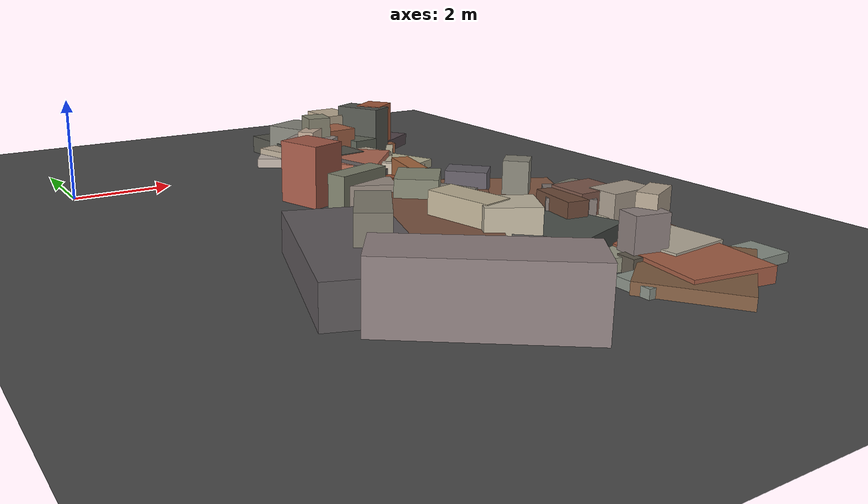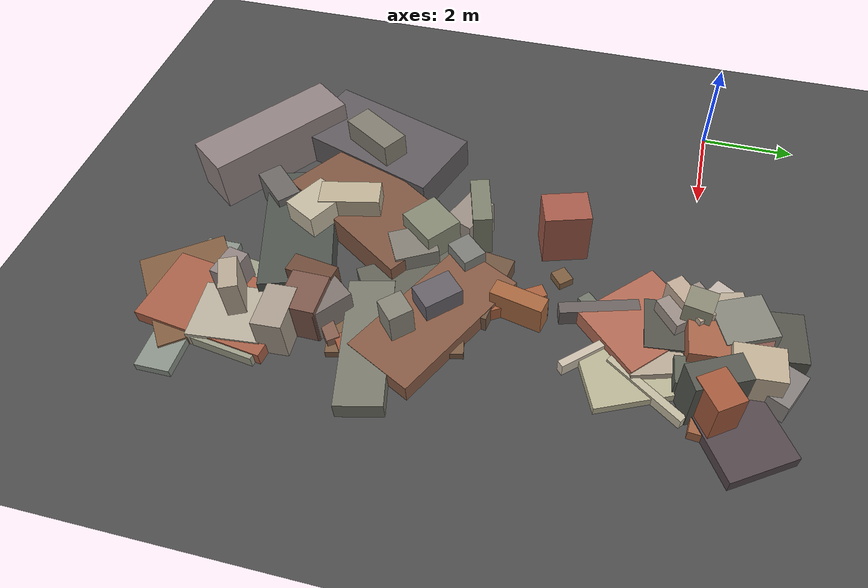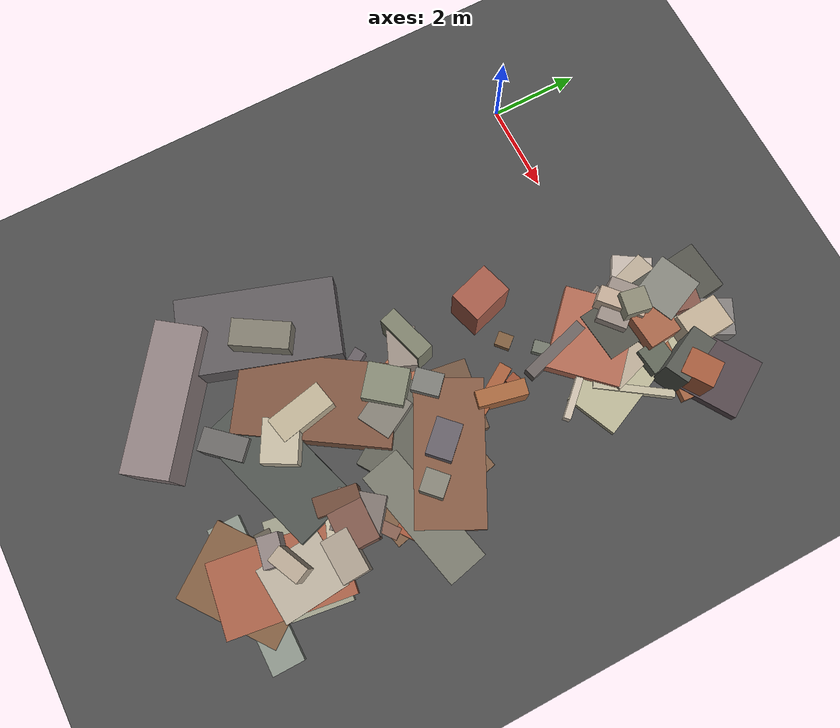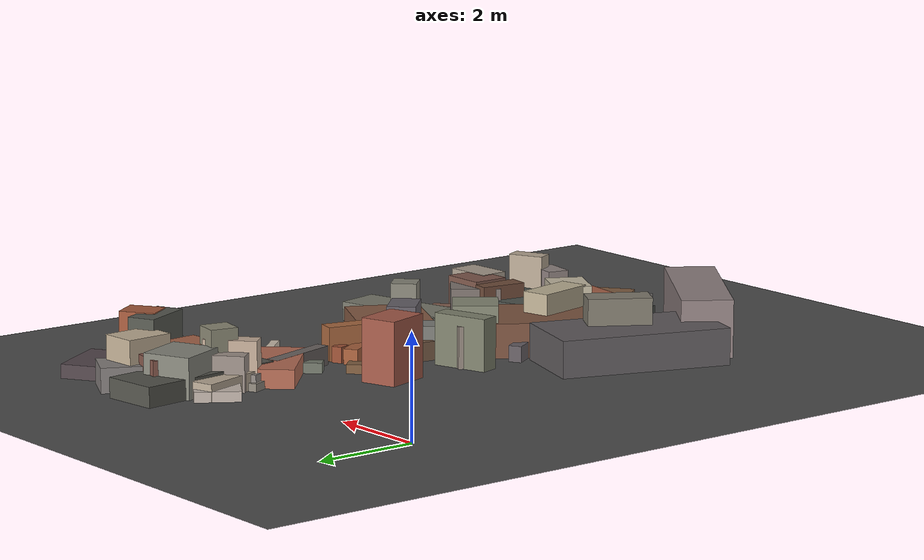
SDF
<sdf version="1.6">
 <world name="navitas_arena">
  <model name="ground_plane">
   <static>true</static>
   <link name="link">
    <collision name="collision">
     <geometry><plane><normal>0 0 1</normal><size>400 400</size></plane></geometry>
     <surface><friction><ode><mu>0.800</mu><mu2>0.800</mu2></ode></friction></surface>
    </collision>
    <visual name="visual">
     <cast_shadows>false</cast_shadows>
     <geometry><plane><normal>0 0 1</normal><size>400 400</size></plane></geometry>
     <material>
      <specular>0.04 0.04 0.04 1</specular>
      <script>
       <uri>file://media/materials/scripts/navitas_asphalt.material</uri>
       <name>Navitas/RealArenaAsphalt</name>
      </script>
     </material>
    </visual>
   </link>
  </model>
  <model name="deb_orta_12">
   <static>true</static>
   <pose>5.278 -4.513 0.000 0 0 0</pose>
   <link name="link">
    <collision name="col_0">
     <pose>0.349 0.404 0.186 0.000 0.000 2.993</pose>
     <geometry><box><size>1.561 1.014 0.373</size></box></geometry>
    </collision>
    <visual name="vis_0">
     <pose>0.349 0.404 0.186 0.000 0.000 2.993</pose>
     <geometry><box><size>1.561 1.014 0.373</size></box></geometry>
     <material>
      <ambient>0.42 0.31 0.24 1</ambient>
      <diffuse>0.45 0.34 0.26 1</diffuse>
      <specular>0.05 0.05 0.045 1</specular>
     </material>
    </visual>
    <collision name="col_1">
     <pose>0.856 -0.532 0.160 0.000 0.000 3.828</pose>
     <geometry><box><size>0.471 0.370 0.319</size></box></geometry>
    </collision>
    <visual name="vis_1">
     <pose>0.856 -0.532 0.160 0.000 0.000 3.828</pose>
     <geometry><box><size>0.471 0.370 0.319</size></box></geometry>
     <material>
      <ambient>0.61 0.35 0.27 1</ambient>
      <diffuse>0.66 0.38 0.29 1</diffuse>
      <specular>0.05 0.05 0.045 1</specular>
     </material>
    </visual>
    <collision name="col_2">
     <pose>-1.093 -0.086 0.409 0.000 0.000 1.177</pose>
     <geometry><box><size>0.602 0.843 0.818</size></box></geometry>
    </collision>
    <visual name="vis_2">
     <pose>-1.093 -0.086 0.409 0.000 0.000 1.177</pose>
     <geometry><box><size>0.602 0.843 0.818</size></box></geometry>
     <material>
      <ambient>0.57 0.52 0.48 1</ambient>
      <diffuse>0.61 0.56 0.52 1</diffuse>
      <specular>0.05 0.05 0.045 1</specular>
     </material>
    </visual>
    <collision name="col_3">
     <pose>-0.066 -1.000 0.366 0.000 0.000 2.077</pose>
     <geometry><box><size>0.883 0.762 0.733</size></box></geometry>
    </collision>
    <visual name="vis_3">
     <pose>-0.066 -1.000 0.366 0.000 0.000 2.077</pose>
     <geometry><box><size>0.883 0.762 0.733</size></box></geometry>
     <material>
      <ambient>0.49 0.46 0.42 1</ambient>
      <diffuse>0.52 0.50 0.46 1</diffuse>
      <specular>0.05 0.05 0.045 1</specular>
     </material>
    </visual>
    <collision name="col_4">
     <pose>0.527 1.200 0.154 0.000 0.000 2.135</pose>
     <geometry><box><size>1.284 0.287 0.308</size></box></geometry>
    </collision>
    <visual name="vis_4">
     <pose>0.527 1.200 0.154 0.000 0.000 2.135</pose>
     <geometry><box><size>1.284 0.287 0.308</size></box></geometry>
     <material>
      <ambient>0.61 0.35 0.23 1</ambient>
      <diffuse>0.66 0.38 0.24 1</diffuse>
      <specular>0.05 0.05 0.045 1</specular>
     </material>
    </visual>
    <collision name="col_5">
     <pose>-1.255 0.105 0.508 0.000 0.000 3.439</pose>
     <geometry><box><size>1.132 0.392 1.017</size></box></geometry>
    </collision>
    <visual name="vis_5">
     <pose>-1.255 0.105 0.508 0.000 0.000 3.439</pose>
     <geometry><box><size>1.132 0.392 1.017</size></box></geometry>
     <material>
      <ambient>0.47 0.47 0.40 1</ambient>
      <diffuse>0.50 0.51 0.43 1</diffuse>
      <specular>0.05 0.05 0.045 1</specular>
     </material>
    </visual>
   </link>
  </model>
  <model name="deb_orta_68">
   <static>true</static>
   <pose>6.900 -5.157 0.000 0 0 0</pose>
   <link name="link">
    <collision name="col_0">
     <pose>-0.596 0.449 0.407 0.000 0.000 3.919</pose>
     <geometry><box><size>0.568 0.799 0.815</size></box></geometry>
    </collision>
    <visual name="vis_0">
     <pose>-0.596 0.449 0.407 0.000 0.000 3.919</pose>
     <geometry><box><size>0.568 0.799 0.815</size></box></geometry>
     <material>
      <ambient>0.37 0.36 0.38 1</ambient>
      <diffuse>0.40 0.38 0.41 1</diffuse>
      <specular>0.05 0.05 0.045 1</specular>
     </material>
    </visual>
    <collision name="col_1">
     <pose>-0.586 -0.925 0.104 0.000 0.000 1.597</pose>
     <geometry><box><size>0.338 0.409 0.208</size></box></geometry>
    </collision>
    <visual name="vis_1">
     <pose>-0.586 -0.925 0.104 0.000 0.000 1.597</pose>
     <geometry><box><size>0.338 0.409 0.208</size></box></geometry>
     <material>
      <ambient>0.40 0.28 0.19 1</ambient>
      <diffuse>0.44 0.30 0.20 1</diffuse>
      <specular>0.05 0.05 0.045 1</specular>
     </material>
    </visual>
    <collision name="col_2">
     <pose>1.033 -0.759 0.157 0.000 0.000 3.772</pose>
     <geometry><box><size>1.386 0.278 0.313</size></box></geometry>
    </collision>
    <visual name="vis_2">
     <pose>1.033 -0.759 0.157 0.000 0.000 3.772</pose>
     <geometry><box><size>1.386 0.278 0.313</size></box></geometry>
     <material>
      <ambient>0.59 0.32 0.22 1</ambient>
      <diffuse>0.64 0.35 0.24 1</diffuse>
      <specular>0.05 0.05 0.045 1</specular>
     </material>
    </visual>
    <collision name="col_3">
     <pose>0.560 -0.636 0.191 0.000 0.000 3.372</pose>
     <geometry><box><size>2.800 0.911 0.383</size></box></geometry>
    </collision>
    <visual name="vis_3">
     <pose>0.560 -0.636 0.191 0.000 0.000 3.372</pose>
     <geometry><box><size>2.800 0.911 0.383</size></box></geometry>
     <material>
      <ambient>0.44 0.45 0.39 1</ambient>
      <diffuse>0.48 0.48 0.43 1</diffuse>
      <specular>0.05 0.05 0.045 1</specular>
     </material>
    </visual>
    <collision name="col_4">
     <pose>-0.268 -0.782 0.072 0.000 0.000 4.180</pose>
     <geometry><box><size>0.181 0.431 0.144</size></box></geometry>
    </collision>
    <visual name="vis_4">
     <pose>-0.268 -0.782 0.072 0.000 0.000 4.180</pose>
     <geometry><box><size>0.181 0.431 0.144</size></box></geometry>
     <material>
      <ambient>0.69 0.65 0.55 1</ambient>
      <diffuse>0.75 0.70 0.60 1</diffuse>
      <specular>0.05 0.05 0.045 1</specular>
     </material>
    </visual>
    <collision name="col_5">
     <pose>-0.962 -0.063 0.182 0.000 0.000 2.157</pose>
     <geometry><box><size>2.099 1.569 0.364</size></box></geometry>
    </collision>
    <visual name="vis_5">
     <pose>-0.962 -0.063 0.182 0.000 0.000 2.157</pose>
     <geometry><box><size>2.099 1.569 0.364</size></box></geometry>
     <material>
      <ambient>0.36 0.36 0.32 1</ambient>
      <diffuse>0.39 0.39 0.35 1</diffuse>
      <specular>0.05 0.05 0.045 1</specular>
     </material>
    </visual>
    <collision name="col_6">
     <pose>-0.135 -0.474 0.150 0.000 0.000 1.781</pose>
     <geometry><box><size>0.366 0.183 0.301</size></box></geometry>
    </collision>
    <visual name="vis_6">
     <pose>-0.135 -0.474 0.150 0.000 0.000 1.781</pose>
     <geometry><box><size>0.366 0.183 0.301</size></box></geometry>
     <material>
      <ambient>0.49 0.48 0.45 1</ambient>
      <diffuse>0.53 0.52 0.49 1</diffuse>
      <specular>0.05 0.05 0.045 1</specular>
     </material>
    </visual>
   </link>
  </model>
  <model name="deb_orta_105">
   <static>true</static>
   <pose>6.624 0.920 0.000 0 0 0</pose>
   <link name="link">
    <collision name="col_0">
     <pose>0.095 0.514 0.153 0.000 0.000 0.767</pose>
     <geometry><box><size>0.305 0.194 0.306</size></box></geometry>
    </collision>
    <visual name="vis_0">
     <pose>0.095 0.514 0.153 0.000 0.000 0.767</pose>
     <geometry><box><size>0.305 0.194 0.306</size></box></geometry>
     <material>
      <ambient>0.53 0.53 0.48 1</ambient>
      <diffuse>0.57 0.57 0.52 1</diffuse>
      <specular>0.05 0.05 0.045 1</specular>
     </material>
    </visual>
    <collision name="col_1">
     <pose>-0.067 0.650 0.243 0.000 0.000 1.110</pose>
     <geometry><box><size>1.087 0.821 0.485</size></box></geometry>
    </collision>
    <visual name="vis_1">
     <pose>-0.067 0.650 0.243 0.000 0.000 1.110</pose>
     <geometry><box><size>1.087 0.821 0.485</size></box></geometry>
     <material>
      <ambient>0.48 0.46 0.45 1</ambient>
      <diffuse>0.52 0.50 0.49 1</diffuse>
      <specular>0.05 0.05 0.045 1</specular>
     </material>
    </visual>
    <collision name="col_2">
     <pose>-0.752 0.257 0.341 0.000 0.000 1.382</pose>
     <geometry><box><size>0.791 0.703 0.683</size></box></geometry>
    </collision>
    <visual name="vis_2">
     <pose>-0.752 0.257 0.341 0.000 0.000 1.382</pose>
     <geometry><box><size>0.791 0.703 0.683</size></box></geometry>
     <material>
      <ambient>0.49 0.33 0.28 1</ambient>
      <diffuse>0.53 0.35 0.30 1</diffuse>
      <specular>0.05 0.05 0.045 1</specular>
     </material>
    </visual>
    <collision name="col_3">
     <pose>0.474 -0.493 0.120 0.000 0.000 -0.088</pose>
     <geometry><box><size>1.584 0.261 0.240</size></box></geometry>
    </collision>
    <visual name="vis_3">
     <pose>0.474 -0.493 0.120 0.000 0.000 -0.088</pose>
     <geometry><box><size>1.584 0.261 0.240</size></box></geometry>
     <material>
      <ambient>0.58 0.36 0.24 1</ambient>
      <diffuse>0.63 0.39 0.26 1</diffuse>
      <specular>0.05 0.05 0.045 1</specular>
     </material>
    </visual>
    <collision name="col_4">
     <pose>0.517 -0.383 0.587 0.000 0.000 -1.120</pose>
     <geometry><box><size>1.077 0.550 1.174</size></box></geometry>
    </collision>
    <visual name="vis_4">
     <pose>0.517 -0.383 0.587 0.000 0.000 -1.120</pose>
     <geometry><box><size>1.077 0.550 1.174</size></box></geometry>
     <material>
      <ambient>0.31 0.32 0.30 1</ambient>
      <diffuse>0.34 0.35 0.32 1</diffuse>
      <specular>0.05 0.05 0.045 1</specular>
     </material>
    </visual>
    <collision name="col_5">
     <pose>0.009 0.345 0.482 0.000 0.000 0.064</pose>
     <geometry><box><size>0.722 0.940 0.965</size></box></geometry>
    </collision>
    <visual name="vis_5">
     <pose>0.009 0.345 0.482 0.000 0.000 0.064</pose>
     <geometry><box><size>0.722 0.940 0.965</size></box></geometry>
     <material>
      <ambient>0.71 0.64 0.55 1</ambient>
      <diffuse>0.76 0.69 0.59 1</diffuse>
      <specular>0.05 0.05 0.045 1</specular>
     </material>
    </visual>
   </link>
  </model>
  <model name="deb_orta_120">
   <static>true</static>
   <pose>6.694 0.435 0.000 0 0 0</pose>
   <link name="link">
    <collision name="col_0">
     <pose>-0.219 -0.291 0.177 0.000 0.000 0.506</pose>
     <geometry><box><size>1.607 0.126 0.355</size></box></geometry>
    </collision>
    <visual name="vis_0">
     <pose>-0.219 -0.291 0.177 0.000 0.000 0.506</pose>
     <geometry><box><size>1.607 0.126 0.355</size></box></geometry>
     <material>
      <ambient>0.37 0.36 0.34 1</ambient>
      <diffuse>0.40 0.39 0.37 1</diffuse>
      <specular>0.05 0.05 0.045 1</specular>
     </material>
    </visual>
    <collision name="col_1">
     <pose>0.466 -1.021 0.123 0.000 0.000 0.974</pose>
     <geometry><box><size>1.748 0.160 0.245</size></box></geometry>
    </collision>
    <visual name="vis_1">
     <pose>0.466 -1.021 0.123 0.000 0.000 0.974</pose>
     <geometry><box><size>1.748 0.160 0.245</size></box></geometry>
     <material>
      <ambient>0.70 0.67 0.58 1</ambient>
      <diffuse>0.76 0.73 0.63 1</diffuse>
      <specular>0.05 0.05 0.045 1</specular>
     </material>
    </visual>
    <collision name="col_2">
     <pose>-0.018 -0.850 0.093 0.000 0.000 1.990</pose>
     <geometry><box><size>2.771 1.200 0.185</size></box></geometry>
    </collision>
    <visual name="vis_2">
     <pose>-0.018 -0.850 0.093 0.000 0.000 1.990</pose>
     <geometry><box><size>2.771 1.200 0.185</size></box></geometry>
     <material>
      <ambient>0.67 0.66 0.55 1</ambient>
      <diffuse>0.73 0.71 0.59 1</diffuse>
      <specular>0.05 0.05 0.045 1</specular>
     </material>
    </visual>
    <collision name="col_3">
     <pose>-0.115 -0.136 0.110 0.000 0.000 2.664</pose>
     <geometry><box><size>0.428 0.347 0.220</size></box></geometry>
    </collision>
    <visual name="vis_3">
     <pose>-0.115 -0.136 0.110 0.000 0.000 2.664</pose>
     <geometry><box><size>0.428 0.347 0.220</size></box></geometry>
     <material>
      <ambient>0.64 0.42 0.30 1</ambient>
      <diffuse>0.70 0.45 0.33 1</diffuse>
      <specular>0.05 0.05 0.045 1</specular>
     </material>
    </visual>
   </link>
  </model>
  <model name="deb_orta_136">
   <static>true</static>
   <pose>7.070 -8.859 0.000 0 0 0</pose>
   <link name="link">
    <collision name="col_0">
     <pose>0.591 -0.044 0.113 0.000 0.000 -0.065</pose>
     <geometry><box><size>0.381 0.366 0.226</size></box></geometry>
    </collision>
    <visual name="vis_0">
     <pose>0.591 -0.044 0.113 0.000 0.000 -0.065</pose>
     <geometry><box><size>0.381 0.366 0.226</size></box></geometry>
     <material>
      <ambient>0.55 0.54 0.48 1</ambient>
      <diffuse>0.60 0.59 0.51 1</diffuse>
      <specular>0.05 0.05 0.045 1</specular>
     </material>
    </visual>
    <collision name="col_1">
     <pose>0.185 -0.653 0.086 0.000 0.000 0.003</pose>
     <geometry><box><size>3.200 0.701 0.173</size></box></geometry>
    </collision>
    <visual name="vis_1">
     <pose>0.185 -0.653 0.086 0.000 0.000 0.003</pose>
     <geometry><box><size>3.200 0.701 0.173</size></box></geometry>
     <material>
      <ambient>0.51 0.53 0.50 1</ambient>
      <diffuse>0.55 0.58 0.54 1</diffuse>
      <specular>0.05 0.05 0.045 1</specular>
     </material>
    </visual>
    <collision name="col_2">
     <pose>0.550 -0.290 0.092 0.000 0.000 0.301</pose>
     <geometry><box><size>0.220 0.359 0.184</size></box></geometry>
    </collision>
    <visual name="vis_2">
     <pose>0.550 -0.290 0.092 0.000 0.000 0.301</pose>
     <geometry><box><size>0.220 0.359 0.184</size></box></geometry>
     <material>
      <ambient>0.66 0.39 0.29 1</ambient>
      <diffuse>0.71 0.42 0.31 1</diffuse>
      <specular>0.05 0.05 0.045 1</specular>
     </material>
    </visual>
    <collision name="col_3">
     <pose>-0.769 -0.012 0.139 0.000 0.000 -0.014</pose>
     <geometry><box><size>0.201 0.349 0.277</size></box></geometry>
    </collision>
    <visual name="vis_3">
     <pose>-0.769 -0.012 0.139 0.000 0.000 -0.014</pose>
     <geometry><box><size>0.201 0.349 0.277</size></box></geometry>
     <material>
      <ambient>0.36 0.34 0.29 1</ambient>
      <diffuse>0.39 0.36 0.31 1</diffuse>
      <specular>0.05 0.05 0.045 1</specular>
     </material>
    </visual>
    <collision name="col_4">
     <pose>0.038 0.322 0.587 0.000 0.000 0.434</pose>
     <geometry><box><size>0.723 0.357 1.173</size></box></geometry>
    </collision>
    <visual name="vis_4">
     <pose>0.038 0.322 0.587 0.000 0.000 0.434</pose>
     <geometry><box><size>0.723 0.357 1.173</size></box></geometry>
     <material>
      <ambient>0.67 0.61 0.53 1</ambient>
      <diffuse>0.72 0.66 0.58 1</diffuse>
      <specular>0.05 0.05 0.045 1</specular>
     </material>
    </visual>
    <collision name="col_5">
     <pose>-0.169 -0.431 0.139 0.000 0.000 1.788</pose>
     <geometry><box><size>0.206 0.167 0.278</size></box></geometry>
    </collision>
    <visual name="vis_5">
     <pose>-0.169 -0.431 0.139 0.000 0.000 1.788</pose>
     <geometry><box><size>0.206 0.167 0.278</size></box></geometry>
     <material>
      <ambient>0.60 0.61 0.55 1</ambient>
      <diffuse>0.64 0.66 0.59 1</diffuse>
      <specular>0.05 0.05 0.045 1</specular>
     </material>
    </visual>
    <collision name="col_6">
     <pose>-0.074 -0.721 0.109 0.000 0.000 0.642</pose>
     <geometry><box><size>2.282 1.722 0.217</size></box></geometry>
    </collision>
    <visual name="vis_6">
     <pose>-0.074 -0.721 0.109 0.000 0.000 0.642</pose>
     <geometry><box><size>2.282 1.722 0.217</size></box></geometry>
     <material>
      <ambient>0.47 0.34 0.24 1</ambient>
      <diffuse>0.51 0.37 0.26 1</diffuse>
      <specular>0.05 0.05 0.045 1</specular>
     </material>
    </visual>
   </link>
  </model>
  <model name="deb_orta_159">
   <static>true</static>
   <pose>7.107 -7.897 0.000 0 0 0</pose>
   <link name="link">
    <collision name="col_0">
     <pose>-0.196 -0.059 0.122 0.000 0.000 0.952</pose>
     <geometry><box><size>0.441 0.358 0.245</size></box></geometry>
    </collision>
    <visual name="vis_0">
     <pose>-0.196 -0.059 0.122 0.000 0.000 0.952</pose>
     <geometry><box><size>0.441 0.358 0.245</size></box></geometry>
     <material>
      <ambient>0.40 0.27 0.23 1</ambient>
      <diffuse>0.43 0.29 0.25 1</diffuse>
      <specular>0.05 0.05 0.045 1</specular>
     </material>
    </visual>
    <collision name="col_1">
     <pose>0.351 0.384 0.461 0.000 0.000 3.193</pose>
     <geometry><box><size>0.946 0.588 0.921</size></box></geometry>
    </collision>
    <visual name="vis_1">
     <pose>0.351 0.384 0.461 0.000 0.000 3.193</pose>
     <geometry><box><size>0.946 0.588 0.921</size></box></geometry>
     <material>
      <ambient>0.62 0.57 0.52 1</ambient>
      <diffuse>0.67 0.62 0.56 1</diffuse>
      <specular>0.05 0.05 0.045 1</specular>
     </material>
    </visual>
    <collision name="col_2">
     <pose>0.060 -0.816 0.067 0.000 0.000 1.966</pose>
     <geometry><box><size>1.635 0.256 0.134</size></box></geometry>
    </collision>
    <visual name="vis_2">
     <pose>0.060 -0.816 0.067 0.000 0.000 1.966</pose>
     <geometry><box><size>1.635 0.256 0.134</size></box></geometry>
     <material>
      <ambient>0.35 0.35 0.35 1</ambient>
      <diffuse>0.38 0.38 0.37 1</diffuse>
      <specular>0.05 0.05 0.045 1</specular>
     </material>
    </visual>
    <collision name="col_3">
     <pose>0.303 -0.612 0.163 0.000 0.000 1.662</pose>
     <geometry><box><size>1.453 1.248 0.327</size></box></geometry>
    </collision>
    <visual name="vis_3">
     <pose>0.303 -0.612 0.163 0.000 0.000 1.662</pose>
     <geometry><box><size>1.453 1.248 0.327</size></box></geometry>
     <material>
      <ambient>0.68 0.63 0.57 1</ambient>
      <diffuse>0.73 0.69 0.62 1</diffuse>
      <specular>0.05 0.05 0.045 1</specular>
     </material>
    </visual>
    <collision name="col_4">
     <pose>0.053 -0.382 0.124 0.000 0.000 3.003</pose>
     <geometry><box><size>2.094 1.313 0.247</size></box></geometry>
    </collision>
    <visual name="vis_4">
     <pose>0.053 -0.382 0.124 0.000 0.000 3.003</pose>
     <geometry><box><size>2.094 1.313 0.247</size></box></geometry>
     <material>
      <ambient>0.57 0.57 0.50 1</ambient>
      <diffuse>0.62 0.62 0.54 1</diffuse>
      <specular>0.05 0.05 0.045 1</specular>
     </material>
    </visual>
    <collision name="col_5">
     <pose>-0.315 0.465 0.246 0.000 0.000 2.781</pose>
     <geometry><box><size>0.777 0.417 0.492</size></box></geometry>
    </collision>
    <visual name="vis_5">
     <pose>-0.315 0.465 0.246 0.000 0.000 2.781</pose>
     <geometry><box><size>0.777 0.417 0.492</size></box></geometry>
     <material>
      <ambient>0.71 0.67 0.59 1</ambient>
      <diffuse>0.77 0.73 0.64 1</diffuse>
      <specular>0.05 0.05 0.045 1</specular>
     </material>
    </visual>
   </link>
  </model>
  <model name="deb_orta_197">
   <static>true</static>
   <pose>6.949 -9.328 0.000 0 0 0</pose>
   <link name="link">
    <collision name="col_0">
     <pose>0.279 0.431 0.143 0.000 0.000 1.433</pose>
     <geometry><box><size>2.750 1.599 0.286</size></box></geometry>
    </collision>
    <visual name="vis_0">
     <pose>0.279 0.431 0.143 0.000 0.000 1.433</pose>
     <geometry><box><size>2.750 1.599 0.286</size></box></geometry>
     <material>
      <ambient>0.61 0.35 0.26 1</ambient>
      <diffuse>0.66 0.38 0.28 1</diffuse>
      <specular>0.05 0.05 0.045 1</specular>
     </material>
    </visual>
    <collision name="col_1">
     <pose>-0.014 0.549 0.097 0.000 0.000 2.367</pose>
     <geometry><box><size>0.278 0.399 0.193</size></box></geometry>
    </collision>
    <visual name="vis_1">
     <pose>-0.014 0.549 0.097 0.000 0.000 2.367</pose>
     <geometry><box><size>0.278 0.399 0.193</size></box></geometry>
     <material>
      <ambient>0.62 0.59 0.51 1</ambient>
      <diffuse>0.67 0.64 0.55 1</diffuse>
      <specular>0.05 0.05 0.045 1</specular>
     </material>
    </visual>
    <collision name="col_2">
     <pose>0.140 -0.140 0.083 0.000 0.000 1.910</pose>
     <geometry><box><size>0.272 0.401 0.165</size></box></geometry>
    </collision>
    <visual name="vis_2">
     <pose>0.140 -0.140 0.083 0.000 0.000 1.910</pose>
     <geometry><box><size>0.272 0.401 0.165</size></box></geometry>
     <material>
      <ambient>0.64 0.42 0.29 1</ambient>
      <diffuse>0.69 0.46 0.31 1</diffuse>
      <specular>0.05 0.05 0.045 1</specular>
     </material>
    </visual>
    <collision name="col_3">
     <pose>-0.254 0.567 0.459 0.000 0.000 2.954</pose>
     <geometry><box><size>0.655 0.436 0.917</size></box></geometry>
    </collision>
    <visual name="vis_3">
     <pose>-0.254 0.567 0.459 0.000 0.000 2.954</pose>
     <geometry><box><size>0.655 0.436 0.917</size></box></geometry>
     <material>
      <ambient>0.53 0.49 0.47 1</ambient>
      <diffuse>0.57 0.52 0.51 1</diffuse>
      <specular>0.05 0.05 0.045 1</specular>
     </material>
    </visual>
   </link>
  </model>
  <model name="deb_orta_247">
   <static>true</static>
   <pose>7.003 0.757 0.000 0 0 0</pose>
   <link name="link">
    <collision name="col_0">
     <pose>0.612 0.351 0.136 0.000 0.000 0.572</pose>
     <geometry><box><size>1.673 1.374 0.273</size></box></geometry>
    </collision>
    <visual name="vis_0">
     <pose>0.612 0.351 0.136 0.000 0.000 0.572</pose>
     <geometry><box><size>1.673 1.374 0.273</size></box></geometry>
     <material>
      <ambient>0.31 0.26 0.28 1</ambient>
      <diffuse>0.33 0.28 0.30 1</diffuse>
      <specular>0.05 0.05 0.045 1</specular>
     </material>
    </visual>
    <collision name="col_1">
     <pose>-0.223 -0.609 0.251 0.000 0.000 0.115</pose>
     <geometry><box><size>0.591 0.585 0.502</size></box></geometry>
    </collision>
    <visual name="vis_1">
     <pose>-0.223 -0.609 0.251 0.000 0.000 0.115</pose>
     <geometry><box><size>0.591 0.585 0.502</size></box></geometry>
     <material>
      <ambient>0.35 0.37 0.32 1</ambient>
      <diffuse>0.38 0.40 0.35 1</diffuse>
      <specular>0.05 0.05 0.045 1</specular>
     </material>
    </visual>
    <collision name="col_2">
     <pose>-0.177 -0.688 0.106 0.000 0.000 -0.572</pose>
     <geometry><box><size>0.194 0.316 0.211</size></box></geometry>
    </collision>
    <visual name="vis_2">
     <pose>-0.177 -0.688 0.106 0.000 0.000 -0.572</pose>
     <geometry><box><size>0.194 0.316 0.211</size></box></geometry>
     <material>
      <ambient>0.48 0.50 0.48 1</ambient>
      <diffuse>0.52 0.54 0.52 1</diffuse>
      <specular>0.05 0.05 0.045 1</specular>
     </material>
    </visual>
    <collision name="col_3">
     <pose>0.061 -0.528 0.113 0.000 0.000 -0.377</pose>
     <geometry><box><size>0.414 0.270 0.227</size></box></geometry>
    </collision>
    <visual name="vis_3">
     <pose>0.061 -0.528 0.113 0.000 0.000 -0.377</pose>
     <geometry><box><size>0.414 0.270 0.227</size></box></geometry>
     <material>
      <ambient>0.35 0.35 0.32 1</ambient>
      <diffuse>0.38 0.37 0.34 1</diffuse>
      <specular>0.05 0.05 0.045 1</specular>
     </material>
    </visual>
    <collision name="col_4">
     <pose>0.483 -0.161 0.597 0.000 0.000 0.606</pose>
     <geometry><box><size>0.716 0.587 1.195</size></box></geometry>
    </collision>
    <visual name="vis_4">
     <pose>0.483 -0.161 0.597 0.000 0.000 0.606</pose>
     <geometry><box><size>0.716 0.587 1.195</size></box></geometry>
     <material>
      <ambient>0.60 0.33 0.22 1</ambient>
      <diffuse>0.65 0.36 0.24 1</diffuse>
      <specular>0.05 0.05 0.045 1</specular>
     </material>
    </visual>
   </link>
  </model>
  <model name="deb_orta_272">
   <static>true</static>
   <pose>5.508 0.232 0.000 0 0 0</pose>
   <link name="link">
    <collision name="col_0">
     <pose>0.680 0.157 0.388 0.000 0.000 0.088</pose>
     <geometry><box><size>0.791 0.766 0.776</size></box></geometry>
    </collision>
    <visual name="vis_0">
     <pose>0.680 0.157 0.388 0.000 0.000 0.088</pose>
     <geometry><box><size>0.791 0.766 0.776</size></box></geometry>
     <material>
      <ambient>0.61 0.37 0.27 1</ambient>
      <diffuse>0.66 0.40 0.29 1</diffuse>
      <specular>0.05 0.05 0.045 1</specular>
     </material>
    </visual>
    <collision name="col_1">
     <pose>0.167 0.485 0.196 0.000 0.000 1.678</pose>
     <geometry><box><size>3.024 1.126 0.392</size></box></geometry>
    </collision>
    <visual name="vis_1">
     <pose>0.167 0.485 0.196 0.000 0.000 1.678</pose>
     <geometry><box><size>3.024 1.126 0.392</size></box></geometry>
     <material>
      <ambient>0.31 0.31 0.28 1</ambient>
      <diffuse>0.33 0.33 0.30 1</diffuse>
      <specular>0.05 0.05 0.045 1</specular>
     </material>
    </visual>
    <collision name="col_2">
     <pose>-0.281 0.638 0.073 0.000 0.000 1.483</pose>
     <geometry><box><size>0.421 0.353 0.146</size></box></geometry>
    </collision>
    <visual name="vis_2">
     <pose>-0.281 0.638 0.073 0.000 0.000 1.483</pose>
     <geometry><box><size>0.421 0.353 0.146</size></box></geometry>
     <material>
      <ambient>0.38 0.35 0.32 1</ambient>
      <diffuse>0.41 0.37 0.35 1</diffuse>
      <specular>0.05 0.05 0.045 1</specular>
     </material>
    </visual>
    <collision name="col_3">
     <pose>0.149 0.143 0.100 0.000 0.000 1.873</pose>
     <geometry><box><size>0.188 0.235 0.201</size></box></geometry>
    </collision>
    <visual name="vis_3">
     <pose>0.149 0.143 0.100 0.000 0.000 1.873</pose>
     <geometry><box><size>0.188 0.235 0.201</size></box></geometry>
     <material>
      <ambient>0.45 0.41 0.40 1</ambient>
      <diffuse>0.49 0.44 0.43 1</diffuse>
      <specular>0.05 0.05 0.045 1</specular>
     </material>
    </visual>
    <collision name="col_4">
     <pose>-0.402 -0.508 0.149 0.000 0.000 2.024</pose>
     <geometry><box><size>0.466 0.322 0.297</size></box></geometry>
    </collision>
    <visual name="vis_4">
     <pose>-0.402 -0.508 0.149 0.000 0.000 2.024</pose>
     <geometry><box><size>0.466 0.322 0.297</size></box></geometry>
     <material>
      <ambient>0.52 0.49 0.47 1</ambient>
      <diffuse>0.56 0.53 0.51 1</diffuse>
      <specular>0.05 0.05 0.045 1</specular>
     </material>
    </visual>
    <collision name="col_5">
     <pose>-0.079 -0.270 0.344 0.000 0.000 2.283</pose>
     <geometry><box><size>1.007 0.667 0.688</size></box></geometry>
    </collision>
    <visual name="vis_5">
     <pose>-0.079 -0.270 0.344 0.000 0.000 2.283</pose>
     <geometry><box><size>1.007 0.667 0.688</size></box></geometry>
     <material>
      <ambient>0.57 0.52 0.49 1</ambient>
      <diffuse>0.61 0.56 0.53 1</diffuse>
      <specular>0.05 0.05 0.045 1</specular>
     </material>
    </visual>
    <collision name="col_6">
     <pose>-0.536 -0.400 0.076 0.000 0.000 1.980</pose>
     <geometry><box><size>0.306 0.296 0.153</size></box></geometry>
    </collision>
    <visual name="vis_6">
     <pose>-0.536 -0.400 0.076 0.000 0.000 1.980</pose>
     <geometry><box><size>0.306 0.296 0.153</size></box></geometry>
     <material>
      <ambient>0.52 0.49 0.45 1</ambient>
      <diffuse>0.56 0.53 0.49 1</diffuse>
      <specular>0.05 0.05 0.045 1</specular>
     </material>
    </visual>
   </link>
  </model>
  <model name="deb_orta_282">
   <static>true</static>
   <pose>6.140 -0.681 0.000 0 0 0</pose>
   <link name="link">
    <collision name="col_0">
     <pose>0.610 0.969 0.159 0.000 0.000 1.524</pose>
     <geometry><box><size>0.371 0.273 0.318</size></box></geometry>
    </collision>
    <visual name="vis_0">
     <pose>0.610 0.969 0.159 0.000 0.000 1.524</pose>
     <geometry><box><size>0.371 0.273 0.318</size></box></geometry>
     <material>
      <ambient>0.64 0.41 0.29 1</ambient>
      <diffuse>0.70 0.44 0.31 1</diffuse>
      <specular>0.05 0.05 0.045 1</specular>
     </material>
    </visual>
    <collision name="col_1">
     <pose>-0.494 -0.984 0.186 0.000 0.000 1.856</pose>
     <geometry><box><size>1.568 0.256 0.373</size></box></geometry>
    </collision>
    <visual name="vis_1">
     <pose>-0.494 -0.984 0.186 0.000 0.000 1.856</pose>
     <geometry><box><size>1.568 0.256 0.373</size></box></geometry>
     <material>
      <ambient>0.39 0.36 0.36 1</ambient>
      <diffuse>0.42 0.39 0.38 1</diffuse>
      <specular>0.05 0.05 0.045 1</specular>
     </material>
    </visual>
    <collision name="col_2">
     <pose>-0.384 -0.140 0.186 0.000 0.000 2.385</pose>
     <geometry><box><size>1.876 1.618 0.372</size></box></geometry>
    </collision>
    <visual name="vis_2">
     <pose>-0.384 -0.140 0.186 0.000 0.000 2.385</pose>
     <geometry><box><size>1.876 1.618 0.372</size></box></geometry>
     <material>
      <ambient>0.65 0.39 0.31 1</ambient>
      <diffuse>0.70 0.42 0.33 1</diffuse>
      <specular>0.05 0.05 0.045 1</specular>
     </material>
    </visual>
    <collision name="col_3">
     <pose>0.182 -0.706 0.143 0.000 0.000 2.328</pose>
     <geometry><box><size>2.161 0.152 0.286</size></box></geometry>
    </collision>
    <visual name="vis_3">
     <pose>0.182 -0.706 0.143 0.000 0.000 2.328</pose>
     <geometry><box><size>2.161 0.152 0.286</size></box></geometry>
     <material>
      <ambient>0.74 0.70 0.63 1</ambient>
      <diffuse>0.80 0.75 0.68 1</diffuse>
      <specular>0.05 0.05 0.045 1</specular>
     </material>
    </visual>
   </link>
  </model>
  <model name="deb_orta_285">
   <static>true</static>
   <pose>4.474 -5.280 0.000 0 0 0</pose>
   <link name="link">
    <collision name="col_0">
     <pose>0.294 0.024 0.512 0.000 0.000 2.473</pose>
     <geometry><box><size>0.780 0.882 1.025</size></box></geometry>
    </collision>
    <visual name="vis_0">
     <pose>0.294 0.024 0.512 0.000 0.000 2.473</pose>
     <geometry><box><size>0.780 0.882 1.025</size></box></geometry>
     <material>
      <ambient>0.49 0.50 0.43 1</ambient>
      <diffuse>0.53 0.54 0.46 1</diffuse>
      <specular>0.05 0.05 0.045 1</specular>
     </material>
    </visual>
    <collision name="col_1">
     <pose>0.046 0.565 0.108 0.000 0.000 2.687</pose>
     <geometry><box><size>1.625 0.233 0.216</size></box></geometry>
    </collision>
    <visual name="vis_1">
     <pose>0.046 0.565 0.108 0.000 0.000 2.687</pose>
     <geometry><box><size>1.625 0.233 0.216</size></box></geometry>
     <material>
      <ambient>0.46 0.44 0.41 1</ambient>
      <diffuse>0.50 0.47 0.44 1</diffuse>
      <specular>0.05 0.05 0.045 1</specular>
     </material>
    </visual>
    <collision name="col_2">
     <pose>0.592 0.828 0.326 0.000 0.000 3.979</pose>
     <geometry><box><size>0.614 0.495 0.651</size></box></geometry>
    </collision>
    <visual name="vis_2">
     <pose>0.592 0.828 0.326 0.000 0.000 3.979</pose>
     <geometry><box><size>0.614 0.495 0.651</size></box></geometry>
     <material>
      <ambient>0.45 0.45 0.44 1</ambient>
      <diffuse>0.49 0.49 0.47 1</diffuse>
      <specular>0.05 0.05 0.045 1</specular>
     </material>
    </visual>
    <collision name="col_3">
     <pose>-0.170 -1.067 0.157 0.000 0.000 2.114</pose>
     <geometry><box><size>2.253 0.260 0.315</size></box></geometry>
    </collision>
    <visual name="vis_3">
     <pose>-0.170 -1.067 0.157 0.000 0.000 2.114</pose>
     <geometry><box><size>2.253 0.260 0.315</size></box></geometry>
     <material>
      <ambient>0.37 0.35 0.36 1</ambient>
      <diffuse>0.40 0.37 0.39 1</diffuse>
      <specular>0.05 0.05 0.045 1</specular>
     </material>
    </visual>
    <collision name="col_4">
     <pose>0.182 0.644 0.124 0.000 0.000 3.651</pose>
     <geometry><box><size>1.172 0.245 0.248</size></box></geometry>
    </collision>
    <visual name="vis_4">
     <pose>0.182 0.644 0.124 0.000 0.000 3.651</pose>
     <geometry><box><size>1.172 0.245 0.248</size></box></geometry>
     <material>
      <ambient>0.65 0.41 0.30 1</ambient>
      <diffuse>0.71 0.44 0.32 1</diffuse>
      <specular>0.05 0.05 0.045 1</specular>
     </material>
    </visual>
    <collision name="col_5">
     <pose>-0.015 -0.226 0.179 0.000 0.000 3.858</pose>
     <geometry><box><size>2.279 0.143 0.358</size></box></geometry>
    </collision>
    <visual name="vis_5">
     <pose>-0.015 -0.226 0.179 0.000 0.000 3.858</pose>
     <geometry><box><size>2.279 0.143 0.358</size></box></geometry>
     <material>
      <ambient>0.49 0.46 0.44 1</ambient>
      <diffuse>0.53 0.50 0.47 1</diffuse>
      <specular>0.05 0.05 0.045 1</specular>
     </material>
    </visual>
   </link>
  </model>
  <model name="deb_orta_289">
   <static>true</static>
   <pose>6.606 -5.034 0.000 0 0 0</pose>
   <link name="link">
    <collision name="col_0">
     <pose>-0.052 0.323 0.195 0.000 0.000 -0.468</pose>
     <geometry><box><size>3.159 1.498 0.391</size></box></geometry>
    </collision>
    <visual name="vis_0">
     <pose>-0.052 0.323 0.195 0.000 0.000 -0.468</pose>
     <geometry><box><size>3.159 1.498 0.391</size></box></geometry>
     <material>
      <ambient>0.50 0.33 0.25 1</ambient>
      <diffuse>0.53 0.36 0.27 1</diffuse>
      <specular>0.05 0.05 0.045 1</specular>
     </material>
    </visual>
    <collision name="col_1">
     <pose>-0.035 -0.367 0.080 0.000 0.000 0.549</pose>
     <geometry><box><size>1.492 0.309 0.160</size></box></geometry>
    </collision>
    <visual name="vis_1">
     <pose>-0.035 -0.367 0.080 0.000 0.000 0.549</pose>
     <geometry><box><size>1.492 0.309 0.160</size></box></geometry>
     <material>
      <ambient>0.35 0.35 0.30 1</ambient>
      <diffuse>0.38 0.38 0.33 1</diffuse>
      <specular>0.05 0.05 0.045 1</specular>
     </material>
    </visual>
    <collision name="col_2">
     <pose>-0.229 0.136 0.134 0.000 0.000 0.769</pose>
     <geometry><box><size>0.297 0.413 0.268</size></box></geometry>
    </collision>
    <visual name="vis_2">
     <pose>-0.229 0.136 0.134 0.000 0.000 0.769</pose>
     <geometry><box><size>0.297 0.413 0.268</size></box></geometry>
     <material>
      <ambient>0.55 0.51 0.46 1</ambient>
      <diffuse>0.60 0.55 0.49 1</diffuse>
      <specular>0.05 0.05 0.045 1</specular>
     </material>
    </visual>
    <collision name="col_3">
     <pose>0.415 -0.265 0.522 0.000 0.000 -0.807</pose>
     <geometry><box><size>0.488 0.514 1.044</size></box></geometry>
    </collision>
    <visual name="vis_3">
     <pose>0.415 -0.265 0.522 0.000 0.000 -0.807</pose>
     <geometry><box><size>0.488 0.514 1.044</size></box></geometry>
     <material>
      <ambient>0.49 0.48 0.44 1</ambient>
      <diffuse>0.53 0.52 0.47 1</diffuse>
      <specular>0.05 0.05 0.045 1</specular>
     </material>
    </visual>
    <collision name="col_4">
     <pose>0.348 -0.332 0.083 0.000 0.000 1.791</pose>
     <geometry><box><size>2.606 1.093 0.165</size></box></geometry>
    </collision>
    <visual name="vis_4">
     <pose>0.348 -0.332 0.083 0.000 0.000 1.791</pose>
     <geometry><box><size>2.606 1.093 0.165</size></box></geometry>
     <material>
      <ambient>0.46 0.34 0.25 1</ambient>
      <diffuse>0.50 0.37 0.27 1</diffuse>
      <specular>0.05 0.05 0.045 1</specular>
     </material>
    </visual>
    <collision name="col_5">
     <pose>-0.418 -0.321 0.179 0.000 0.000 1.783</pose>
     <geometry><box><size>0.766 0.973 0.358</size></box></geometry>
    </collision>
    <visual name="vis_5">
     <pose>-0.418 -0.321 0.179 0.000 0.000 1.783</pose>
     <geometry><box><size>0.766 0.973 0.358</size></box></geometry>
     <material>
      <ambient>0.46 0.33 0.22 1</ambient>
      <diffuse>0.49 0.36 0.23 1</diffuse>
      <specular>0.05 0.05 0.045 1</specular>
     </material>
    </visual>
   </link>
  </model>
  <model name="deb_orta_294">
   <static>true</static>
   <pose>5.209 -2.549 0.000 0 0 0</pose>
   <link name="link">
    <collision name="col_0">
     <pose>0.599 -0.235 0.159 0.000 0.000 -1.188</pose>
     <geometry><box><size>0.260 0.217 0.317</size></box></geometry>
    </collision>
    <visual name="vis_0">
     <pose>0.599 -0.235 0.159 0.000 0.000 -1.188</pose>
     <geometry><box><size>0.260 0.217 0.317</size></box></geometry>
     <material>
      <ambient>0.57 0.30 0.20 1</ambient>
      <diffuse>0.61 0.32 0.21 1</diffuse>
      <specular>0.05 0.05 0.045 1</specular>
     </material>
    </visual>
    <collision name="col_1">
     <pose>0.549 0.997 0.101 0.000 0.000 0.815</pose>
     <geometry><box><size>1.270 0.276 0.202</size></box></geometry>
    </collision>
    <visual name="vis_1">
     <pose>0.549 0.997 0.101 0.000 0.000 0.815</pose>
     <geometry><box><size>1.270 0.276 0.202</size></box></geometry>
     <material>
      <ambient>0.42 0.44 0.39 1</ambient>
      <diffuse>0.45 0.47 0.42 1</diffuse>
      <specular>0.05 0.05 0.045 1</specular>
     </material>
    </visual>
    <collision name="col_2">
     <pose>-1.196 -0.109 0.616 0.000 0.000 -1.266</pose>
     <geometry><box><size>0.940 0.731 1.232</size></box></geometry>
    </collision>
    <visual name="vis_2">
     <pose>-1.196 -0.109 0.616 0.000 0.000 -1.266</pose>
     <geometry><box><size>0.940 0.731 1.232</size></box></geometry>
     <material>
      <ambient>0.60 0.34 0.27 1</ambient>
      <diffuse>0.65 0.36 0.29 1</diffuse>
      <specular>0.05 0.05 0.045 1</specular>
     </material>
    </visual>
    <collision name="col_3">
     <pose>-0.282 0.038 0.089 0.000 0.000 0.725</pose>
     <geometry><box><size>0.341 0.311 0.179</size></box></geometry>
    </collision>
    <visual name="vis_3">
     <pose>-0.282 0.038 0.089 0.000 0.000 0.725</pose>
     <geometry><box><size>0.341 0.311 0.179</size></box></geometry>
     <material>
      <ambient>0.46 0.34 0.23 1</ambient>
      <diffuse>0.50 0.37 0.25 1</diffuse>
      <specular>0.05 0.05 0.045 1</specular>
     </material>
    </visual>
    <collision name="col_4">
     <pose>0.778 -0.638 0.333 0.000 0.000 1.355</pose>
     <geometry><box><size>1.083 0.354 0.666</size></box></geometry>
    </collision>
    <visual name="vis_4">
     <pose>0.778 -0.638 0.333 0.000 0.000 1.355</pose>
     <geometry><box><size>1.083 0.354 0.666</size></box></geometry>
     <material>
      <ambient>0.61 0.38 0.23 1</ambient>
      <diffuse>0.66 0.41 0.25 1</diffuse>
      <specular>0.05 0.05 0.045 1</specular>
     </material>
    </visual>
   </link>
  </model>
  <model name="deb_orta_296">
   <static>true</static>
   <pose>6.646 -6.780 0.000 0 0 0</pose>
   <link name="link">
    <collision name="col_0">
     <pose>0.278 -0.246 0.063 0.000 0.000 1.744</pose>
     <geometry><box><size>0.307 0.278 0.126</size></box></geometry>
    </collision>
    <visual name="vis_0">
     <pose>0.278 -0.246 0.063 0.000 0.000 1.744</pose>
     <geometry><box><size>0.307 0.278 0.126</size></box></geometry>
     <material>
      <ambient>0.49 0.35 0.27 1</ambient>
      <diffuse>0.53 0.38 0.29 1</diffuse>
      <specular>0.05 0.05 0.045 1</specular>
     </material>
    </visual>
    <collision name="col_1">
     <pose>0.371 -0.336 0.455 0.000 0.000 1.565</pose>
     <geometry><box><size>0.753 0.875 0.909</size></box></geometry>
    </collision>
    <visual name="vis_1">
     <pose>0.371 -0.336 0.455 0.000 0.000 1.565</pose>
     <geometry><box><size>0.753 0.875 0.909</size></box></geometry>
     <material>
      <ambient>0.46 0.33 0.28 1</ambient>
      <diffuse>0.50 0.35 0.30 1</diffuse>
      <specular>0.05 0.05 0.045 1</specular>
     </material>
    </visual>
    <collision name="col_2">
     <pose>0.174 -0.134 0.397 0.000 0.000 0.915</pose>
     <geometry><box><size>0.997 0.855 0.794</size></box></geometry>
    </collision>
    <visual name="vis_2">
     <pose>0.174 -0.134 0.397 0.000 0.000 0.915</pose>
     <geometry><box><size>0.997 0.855 0.794</size></box></geometry>
     <material>
      <ambient>0.46 0.42 0.40 1</ambient>
      <diffuse>0.50 0.46 0.44 1</diffuse>
      <specular>0.05 0.05 0.045 1</specular>
     </material>
    </visual>
    <collision name="col_3">
     <pose>0.316 -0.074 0.172 0.000 0.000 0.657</pose>
     <geometry><box><size>1.497 0.260 0.344</size></box></geometry>
    </collision>
    <visual name="vis_3">
     <pose>0.316 -0.074 0.172 0.000 0.000 0.657</pose>
     <geometry><box><size>1.497 0.260 0.344</size></box></geometry>
     <material>
      <ambient>0.49 0.35 0.29 1</ambient>
      <diffuse>0.53 0.38 0.32 1</diffuse>
      <specular>0.05 0.05 0.045 1</specular>
     </material>
    </visual>
    <collision name="col_4">
     <pose>-0.230 -0.404 0.429 0.000 0.000 1.426</pose>
     <geometry><box><size>0.934 0.412 0.859</size></box></geometry>
    </collision>
    <visual name="vis_4">
     <pose>-0.230 -0.404 0.429 0.000 0.000 1.426</pose>
     <geometry><box><size>0.934 0.412 0.859</size></box></geometry>
     <material>
      <ambient>0.40 0.28 0.21 1</ambient>
      <diffuse>0.44 0.30 0.23 1</diffuse>
      <specular>0.05 0.05 0.045 1</specular>
     </material>
    </visual>
   </link>
  </model>
  <model name="deb_orta_297">
   <static>true</static>
   <pose>5.811 0.566 0.000 0 0 0</pose>
   <link name="link">
    <collision name="col_0">
     <pose>-0.183 -0.421 0.565 0.000 0.000 -0.182</pose>
     <geometry><box><size>0.511 0.545 1.130</size></box></geometry>
    </collision>
    <visual name="vis_0">
     <pose>-0.183 -0.421 0.565 0.000 0.000 -0.182</pose>
     <geometry><box><size>0.511 0.545 1.130</size></box></geometry>
     <material>
      <ambient>0.51 0.50 0.43 1</ambient>
      <diffuse>0.55 0.54 0.46 1</diffuse>
      <specular>0.05 0.05 0.045 1</specular>
     </material>
    </visual>
    <collision name="col_1">
     <pose>0.017 -0.495 0.168 0.000 0.000 -1.277</pose>
     <geometry><box><size>2.527 1.766 0.336</size></box></geometry>
    </collision>
    <visual name="vis_1">
     <pose>0.017 -0.495 0.168 0.000 0.000 -1.277</pose>
     <geometry><box><size>2.527 1.766 0.336</size></box></geometry>
     <material>
      <ambient>0.67 0.62 0.55 1</ambient>
      <diffuse>0.73 0.67 0.59 1</diffuse>
      <specular>0.05 0.05 0.045 1</specular>
     </material>
    </visual>
    <collision name="col_2">
     <pose>-0.551 -0.086 0.100 0.000 0.000 -0.568</pose>
     <geometry><box><size>1.660 0.878 0.200</size></box></geometry>
    </collision>
    <visual name="vis_2">
     <pose>-0.551 -0.086 0.100 0.000 0.000 -0.568</pose>
     <geometry><box><size>1.660 0.878 0.200</size></box></geometry>
     <material>
      <ambient>0.71 0.67 0.63 1</ambient>
      <diffuse>0.77 0.72 0.68 1</diffuse>
      <specular>0.05 0.05 0.045 1</specular>
     </material>
    </visual>
    <collision name="col_3">
     <pose>-0.172 0.419 0.399 0.000 0.000 -1.154</pose>
     <geometry><box><size>1.052 0.970 0.798</size></box></geometry>
    </collision>
    <visual name="vis_3">
     <pose>-0.172 0.419 0.399 0.000 0.000 -1.154</pose>
     <geometry><box><size>1.052 0.970 0.798</size></box></geometry>
     <material>
      <ambient>0.49 0.49 0.45 1</ambient>
      <diffuse>0.53 0.53 0.49 1</diffuse>
      <specular>0.05 0.05 0.045 1</specular>
     </material>
    </visual>
    <collision name="col_4">
     <pose>-0.344 -0.594 0.452 0.000 0.000 0.732</pose>
     <geometry><box><size>1.038 0.361 0.904</size></box></geometry>
    </collision>
    <visual name="vis_4">
     <pose>-0.344 -0.594 0.452 0.000 0.000 0.732</pose>
     <geometry><box><size>1.038 0.361 0.904</size></box></geometry>
     <material>
      <ambient>0.70 0.62 0.55 1</ambient>
      <diffuse>0.76 0.67 0.59 1</diffuse>
      <specular>0.05 0.05 0.045 1</specular>
     </material>
    </visual>
    <collision name="col_5">
     <pose>-0.067 0.425 0.258 0.000 0.000 0.460</pose>
     <geometry><box><size>0.668 0.488 0.517</size></box></geometry>
    </collision>
    <visual name="vis_5">
     <pose>-0.067 0.425 0.258 0.000 0.000 0.460</pose>
     <geometry><box><size>0.668 0.488 0.517</size></box></geometry>
     <material>
      <ambient>0.59 0.54 0.53 1</ambient>
      <diffuse>0.64 0.58 0.57 1</diffuse>
      <specular>0.05 0.05 0.045 1</specular>
     </material>
    </visual>
   </link>
  </model>
  <model name="chic_orta_1">
   <static>true</static>
   <pose>3.487 -7.790 0.000 0 0 0</pose>
   <link name="link">
    <collision name="col_0">
     <pose>1.686 -0.199 0.285 0.000 0.000 0.311</pose>
     <geometry><box><size>3.046 1.433 0.569</size></box></geometry>
    </collision>
    <visual name="vis_0">
     <pose>1.686 -0.199 0.285 0.000 0.000 0.311</pose>
     <geometry><box><size>3.046 1.433 0.569</size></box></geometry>
     <material>
      <ambient>0.28 0.30 0.29 1</ambient>
      <diffuse>0.31 0.33 0.31 1</diffuse>
      <specular>0.05 0.05 0.045 1</specular>
     </material>
    </visual>
    <collision name="col_1">
     <pose>0.833 1.117 0.340 0.000 0.000 0.997</pose>
     <geometry><box><size>3.349 1.767 0.680</size></box></geometry>
    </collision>
    <visual name="vis_1">
     <pose>0.833 1.117 0.340 0.000 0.000 0.997</pose>
     <geometry><box><size>3.349 1.767 0.680</size></box></geometry>
     <material>
      <ambient>0.46 0.32 0.24 1</ambient>
      <diffuse>0.50 0.34 0.26 1</diffuse>
      <specular>0.05 0.05 0.045 1</specular>
     </material>
    </visual>
    <collision name="col_2">
     <pose>1.365 0.126 0.539 0.000 0.000 -0.500</pose>
     <geometry><box><size>0.923 0.761 1.079</size></box></geometry>
    </collision>
    <visual name="vis_2">
     <pose>1.365 0.126 0.539 0.000 0.000 -0.500</pose>
     <geometry><box><size>0.923 0.761 1.079</size></box></geometry>
     <material>
      <ambient>0.72 0.67 0.59 1</ambient>
      <diffuse>0.77 0.73 0.64 1</diffuse>
      <specular>0.05 0.05 0.045 1</specular>
     </material>
    </visual>
    <collision name="col_3">
     <pose>0.828 -0.962 0.377 0.000 0.000 0.836</pose>
     <geometry><box><size>0.973 0.510 0.753</size></box></geometry>
    </collision>
    <visual name="vis_3">
     <pose>0.828 -0.962 0.377 0.000 0.000 0.836</pose>
     <geometry><box><size>0.973 0.510 0.753</size></box></geometry>
     <material>
      <ambient>0.39 0.38 0.37 1</ambient>
      <diffuse>0.42 0.41 0.40 1</diffuse>
      <specular>0.05 0.05 0.045 1</specular>
     </material>
    </visual>
    <collision name="col_4">
     <pose>-0.497 -1.620 0.570 0.000 0.000 -0.628</pose>
     <geometry><box><size>3.197 1.008 1.139</size></box></geometry>
    </collision>
    <visual name="vis_4">
     <pose>-0.497 -1.620 0.570 0.000 0.000 -0.628</pose>
     <geometry><box><size>3.197 1.008 1.139</size></box></geometry>
     <material>
      <ambient>0.52 0.47 0.47 1</ambient>
      <diffuse>0.57 0.51 0.51 1</diffuse>
      <specular>0.05 0.05 0.045 1</specular>
     </material>
    </visual>
    <collision name="col_5">
     <pose>1.035 0.746 0.549 0.000 0.000 1.782</pose>
     <geometry><box><size>1.238 0.571 1.098</size></box></geometry>
    </collision>
    <visual name="vis_5">
     <pose>1.035 0.746 0.549 0.000 0.000 1.782</pose>
     <geometry><box><size>1.238 0.571 1.098</size></box></geometry>
     <material>
      <ambient>0.69 0.65 0.55 1</ambient>
      <diffuse>0.75 0.70 0.59 1</diffuse>
      <specular>0.05 0.05 0.045 1</specular>
     </material>
    </visual>
    <collision name="col_6">
     <pose>-1.118 0.694 0.361 0.000 0.000 1.250</pose>
     <geometry><box><size>3.418 1.724 0.722</size></box></geometry>
    </collision>
    <visual name="vis_6">
     <pose>-1.118 0.694 0.361 0.000 0.000 1.250</pose>
     <geometry><box><size>3.418 1.724 0.722</size></box></geometry>
     <material>
      <ambient>0.35 0.34 0.35 1</ambient>
      <diffuse>0.38 0.36 0.37 1</diffuse>
      <specular>0.05 0.05 0.045 1</specular>
     </material>
    </visual>
    <collision name="col_7">
     <pose>-0.787 0.710 0.623 0.000 0.000 1.021</pose>
     <geometry><box><size>1.244 0.577 1.246</size></box></geometry>
    </collision>
    <visual name="vis_7">
     <pose>-0.787 0.710 0.623 0.000 0.000 1.021</pose>
     <geometry><box><size>1.244 0.577 1.246</size></box></geometry>
     <material>
      <ambient>0.47 0.45 0.41 1</ambient>
      <diffuse>0.51 0.49 0.44 1</diffuse>
      <specular>0.05 0.05 0.045 1</specular>
     </material>
    </visual>
   </link>
  </model>
 </world>
</sdf>
